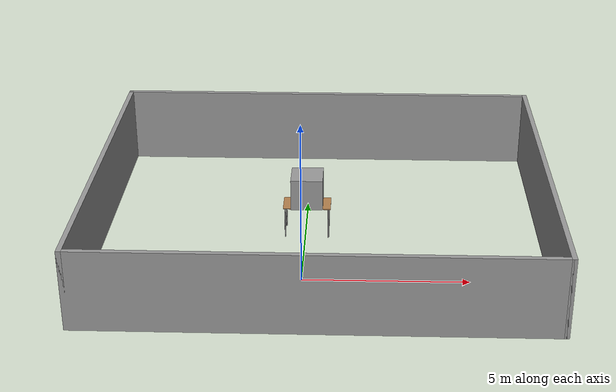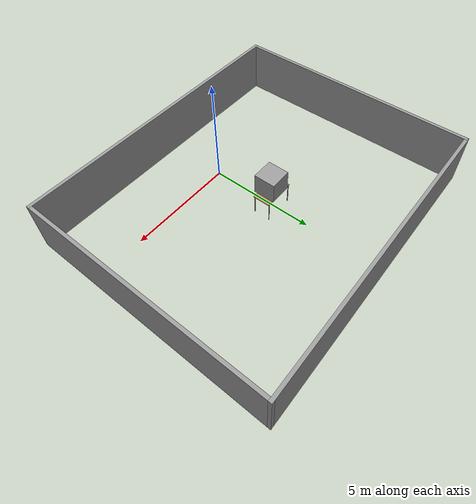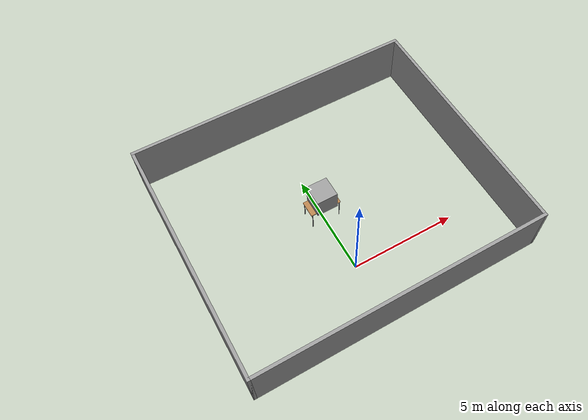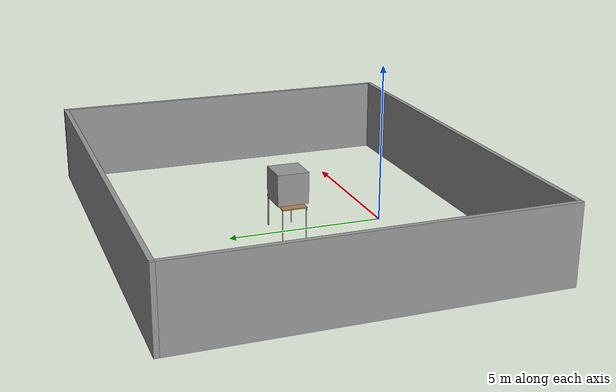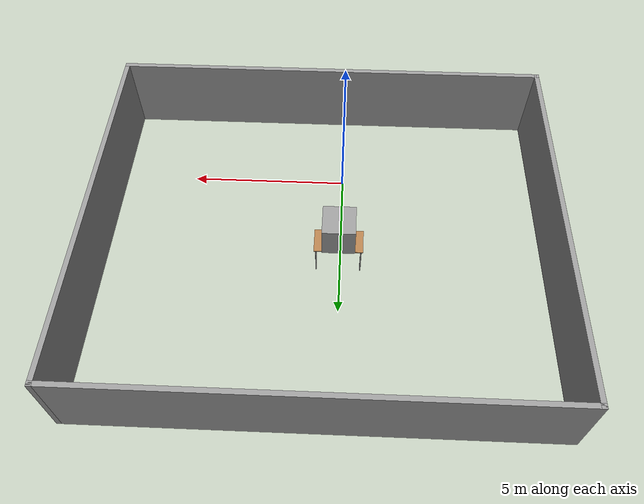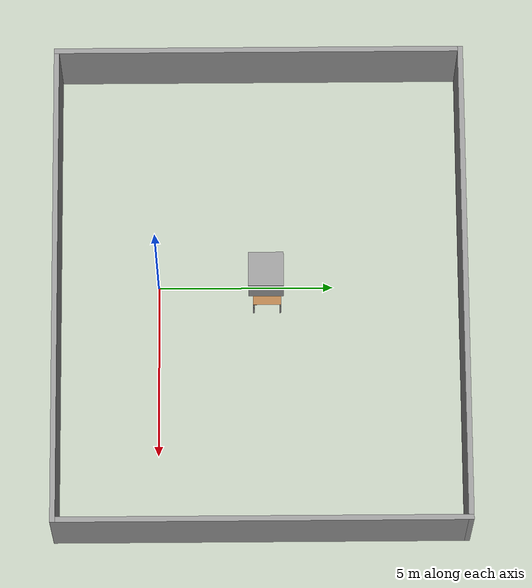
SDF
<sdf version="1.6">
 <world name="default">
  <gravity>0 0 -9.8</gravity>
  <physics name="default_physics" default="0" type="ode">
   <max_step_size>0.001</max_step_size>
   <real_time_factor>1</real_time_factor>
   <real_time_update_rate>1000</real_time_update_rate>
  </physics>
  <light name="Warehouse_CeilingLight_003" type="point">
   <pose>0 0 9 0 -0 0</pose>
   <diffuse>0.5 0.5 0.5 1</diffuse>
   <specular>0.2 0.2 0.2 1</specular>
   <attenuation>
    <range>80</range>
    <constant>0.3</constant>
    <linear>0.01</linear>
    <quadratic>0.001</quadratic>
   </attenuation>
   <direction>0.1 0.1 -1</direction>
  </light>
  <magnetic_field>6e-06 2.3e-05 -4.2e-05</magnetic_field>
  <atmosphere type="adiabatic"/>
  <scene><ambient>0.4 0.4 0.4 1</ambient><background>0.7 0.7 0.7 1</background><shadows>1</shadows></scene>
  <spherical_coordinates>
   <surface_model>EARTH_WGS84</surface_model>
   <latitude_deg>0</latitude_deg>
   <longitude_deg>0</longitude_deg>
   <elevation>0</elevation>
   <heading_deg>0</heading_deg>
  </spherical_coordinates>
  <model name="Untitled">
   <link name="link_0">
    <inertial>
     <mass>1</mass>
     <inertia>
      <ixx>0.166667</ixx>
      <ixy>0</ixy>
      <ixz>0</ixz>
      <iyy>0.166667</iyy>
      <iyz>0</iyz>
      <izz>0.166667</izz>
     </inertia>
    </inertial>
    <pose>0.001767 -0.016083 0.768045 0 -0 0</pose>
    <visual name="visual">
     <geometry><box><size>1 1 1</size></box></geometry>
     <material>
      <lighting>1</lighting>
      <script><uri>file://media/materials/scripts/gazebo.material</uri><name>Gazebo/Grey</name></script>
      <shader type="pixel"><normal_map>__default__</normal_map></shader>
      <ambient>1 1 1 1</ambient>
      <diffuse>1 1 1 1</diffuse>
      <specular>1 1 1 1</specular>
      <emissive>1 1 1 1</emissive>
     </material>
    </visual>
    <collision name="collision">
     <geometry><box><size>1 1 1</size></box></geometry>
     <surface>
      <friction>
       <ode><mu>1</mu><mu2>1</mu2><fdir1>0 0 0</fdir1><slip1>0</slip1><slip2>0</slip2></ode>
       <torsional>
        <coefficient>1</coefficient>
        <patch_radius>0</patch_radius>
        <surface_radius>0</surface_radius>
        <use_patch_radius>1</use_patch_radius>
        <ode><slip>0</slip></ode>
       </torsional>
      </friction>
      <bounce><restitution_coefficient>0</restitution_coefficient><threshold>1e+06</threshold></bounce>
      <contact>
       <collide_without_contact>0</collide_without_contact>
       <collide_without_contact_bitmask>1</collide_without_contact_bitmask>
       <collide_bitmask>1</collide_bitmask>
       <ode>
        <soft_cfm>0</soft_cfm>
        <soft_erp>0.2</soft_erp>
        <kp>1e+13</kp>
        <kd>1</kd>
        <max_vel>0.01</max_vel>
        <min_depth>0</min_depth>
       </ode>
       <bullet>
        <split_impulse>1</split_impulse>
        <split_impulse_penetration_threshold>-0.01</split_impulse_penetration_threshold>
        <soft_cfm>0</soft_cfm>
        <soft_erp>0.2</soft_erp>
        <kp>1e+13</kp>
        <kd>1</kd>
       </bullet>
      </contact>
     </surface>
    </collision>
   </link>
   <model name="table">
    <static>1</static>
    <link name="link">
     <collision name="surface">
      <pose>0 0 1 0 -0 0</pose>
      <geometry><box><size>1.5 0.8 0.03</size></box></geometry>
      <surface><friction><ode><mu>0.6</mu><mu2>0.6</mu2></ode></friction></surface>
     </collision>
     <visual name="visual1">
      <pose>0 0 1 0 -0 0</pose>
      <geometry><box><size>1.5 0.8 0.03</size></box></geometry>
      <material>
       <script><uri>file://media/materials/scripts/gazebo.material</uri><name>Gazebo/Wood</name></script>
      </material>
     </visual>
     <collision name="front_left_leg">
      <pose>0.68 0.38 0.5 0 -0 0</pose>
      <geometry><cylinder><radius>0.02</radius><length>1</length></cylinder></geometry>
     </collision>
     <visual name="front_left_leg">
      <pose>0.68 0.38 0.5 0 -0 0</pose>
      <geometry><cylinder><radius>0.02</radius><length>1</length></cylinder></geometry>
      <material>
       <script><uri>file://media/materials/scripts/gazebo.material</uri><name>Gazebo/Grey</name></script>
      </material>
     </visual>
     <collision name="front_right_leg">
      <pose>0.68 -0.38 0.5 0 -0 0</pose>
      <geometry><cylinder><radius>0.02</radius><length>1</length></cylinder></geometry>
     </collision>
     <visual name="front_right_leg">
      <pose>0.68 -0.38 0.5 0 -0 0</pose>
      <geometry><cylinder><radius>0.02</radius><length>1</length></cylinder></geometry>
      <material>
       <script><uri>file://media/materials/scripts/gazebo.material</uri><name>Gazebo/Grey</name></script>
      </material>
     </visual>
     <collision name="back_right_leg">
      <pose>-0.68 -0.38 0.5 0 -0 0</pose>
      <geometry><cylinder><radius>0.02</radius><length>1</length></cylinder></geometry>
     </collision>
     <visual name="back_right_leg">
      <pose>-0.68 -0.38 0.5 0 -0 0</pose>
      <geometry><cylinder><radius>0.02</radius><length>1</length></cylinder></geometry>
      <material>
       <script><uri>file://media/materials/scripts/gazebo.material</uri><name>Gazebo/Grey</name></script>
      </material>
     </visual>
     <collision name="back_left_leg">
      <pose>-0.68 0.38 0.5 0 -0 0</pose>
      <geometry><cylinder><radius>0.02</radius><length>1</length></cylinder></geometry>
     </collision>
     <visual name="back_left_leg">
      <pose>-0.68 0.38 0.5 0 -0 0</pose>
      <geometry><cylinder><radius>0.02</radius><length>1</length></cylinder></geometry>
      <material>
       <script><uri>file://media/materials/scripts/gazebo.material</uri><name>Gazebo/Grey</name></script>
      </material>
     </visual>
    </link>
    <pose>-0.001767 0.016085 -0.768045 0 -0 0</pose>
   </model>
   <static>0</static>
   <pose>0.046747 3.0949 0.746966 2e-06 8e-06 9.5e-05</pose>
  </model>
  <model name="new_wall">
   <pose>0.515 2.91 0 0 -0 0</pose>
   <link name="Wall_4">
    <collision name="Wall_4_Collision">
     <geometry><box><size>14 0.15 2.5</size></box></geometry>
     <pose>0 0 1.25 0 -0 0</pose>
    </collision>
    <visual name="Wall_4_Visual">
     <pose>0 0 1.25 0 -0 0</pose>
     <geometry><box><size>14 0.15 2.5</size></box></geometry>
     <material>
      <script><uri>file://media/materials/scripts/gazebo.material</uri><name>Gazebo/Grey</name></script>
      <ambient>1 1 1 1</ambient>
     </material>
     <meta><layer>0</layer></meta>
    </visual>
    <pose>-0 -5.8 0 0 -0 0</pose>
   </link>
   <link name="Wall_6">
    <collision name="Wall_6_Collision">
     <geometry><box><size>11.75 0.15 2.5</size></box></geometry>
     <pose>0 0 1.25 0 -0 0</pose>
    </collision>
    <visual name="Wall_6_Visual">
     <pose>0 0 1.25 0 -0 0</pose>
     <geometry><box><size>11.75 0.15 2.5</size></box></geometry>
     <material>
      <script><uri>file://media/materials/scripts/gazebo.material</uri><name>Gazebo/Grey</name></script>
      <ambient>1 1 1 1</ambient>
     </material>
     <meta><layer>0</layer></meta>
    </visual>
    <pose>6.925 -0 0 0 -0 1.5708</pose>
   </link>
   <link name="Wall_7">
    <collision name="Wall_7_Collision">
     <geometry><box><size>14 0.15 2.5</size></box></geometry>
     <pose>0 0 1.25 0 -0 0</pose>
    </collision>
    <visual name="Wall_7_Visual">
     <pose>0 0 1.25 0 -0 0</pose>
     <geometry><box><size>14 0.15 2.5</size></box></geometry>
     <material>
      <script><uri>file://media/materials/scripts/gazebo.material</uri><name>Gazebo/Grey</name></script>
      <ambient>1 1 1 1</ambient>
     </material>
     <meta><layer>0</layer></meta>
    </visual>
    <pose>-0 5.8 0 0 -0 3.14159</pose>
   </link>
   <link name="Wall_8">
    <collision name="Wall_8_Collision">
     <geometry><box><size>11.75 0.15 2.5</size></box></geometry>
     <pose>0 0 1.25 0 -0 0</pose>
    </collision>
    <visual name="Wall_8_Visual">
     <pose>0 0 1.25 0 -0 0</pose>
     <geometry><box><size>11.75 0.15 2.5</size></box></geometry>
     <material>
      <script><uri>file://media/materials/scripts/gazebo.material</uri><name>Gazebo/Grey</name></script>
      <ambient>1 1 1 1</ambient>
     </material>
     <meta><layer>0</layer></meta>
    </visual>
    <pose>-6.925 -0 0 0 -0 -1.5708</pose>
   </link>
   <static>1</static>
  </model>
 </world>
</sdf>
